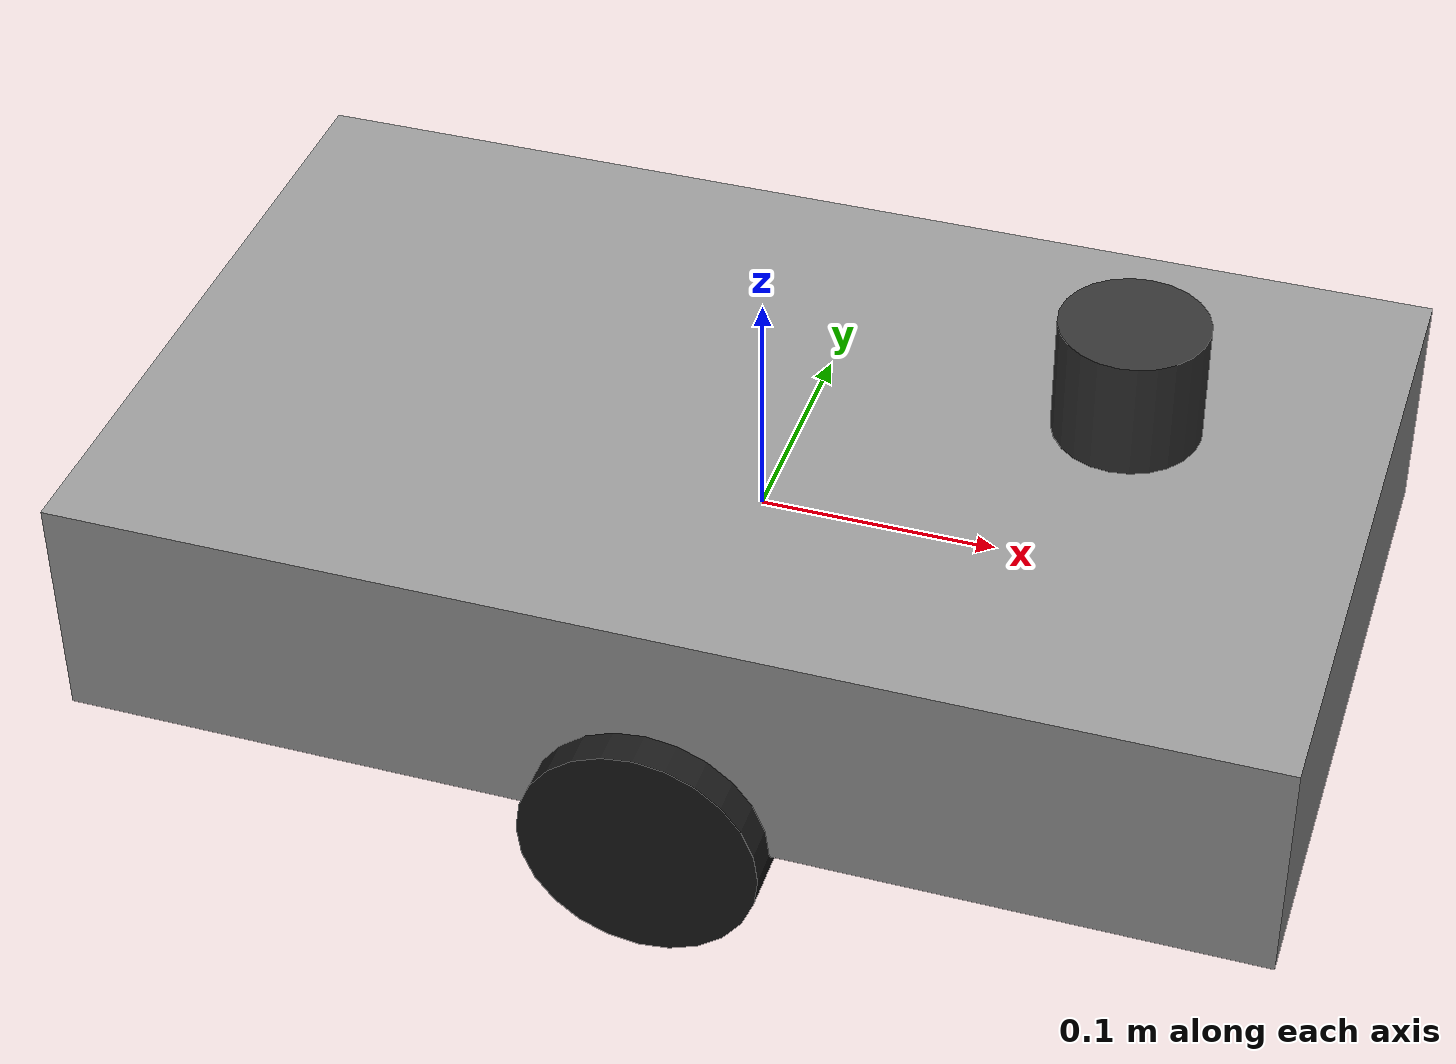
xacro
<?xml version="1.0"?>
<robot xmlns:xacro="http://www.ros.org/wiki/xacro" name="diffbot">

  <!-- Units: meters, kilograms, radians -->

  <!-- Chassis sized to approximate GO2-W footprint -->
  <xacro:property name="chassis_length" value="0.50"/>
  <xacro:property name="chassis_width"  value="0.30"/>
  <xacro:property name="chassis_height" value="0.10"/>

  <xacro:property name="wheel_radius" value="0.05"/>
  <xacro:property name="wheel_width"  value="0.03"/>
  <xacro:property name="wheel_separation" value="0.30"/>

  <xacro:property name="caster_radius" value="0.025"/>

  <!-- base_link at chassis COM, z = wheel_radius + chassis_half_height -->
  <xacro:property name="base_z" value="${wheel_radius + chassis_height/2.0}"/>
  <xacro:property name="wheel_z" value="${wheel_radius - base_z}"/>

  <xacro:macro name="inertial_box" params="mass x y z">
    <inertial>
      <origin xyz="0 0 0" rpy="0 0 0"/>
      <mass value="${mass}"/>
      <inertia
        ixx="${mass/12.0 * (y*y + z*z)}"
        iyy="${mass/12.0 * (x*x + z*z)}"
        izz="${mass/12.0 * (x*x + y*y)}"
        ixy="0" ixz="0" iyz="0"/>
    </inertial>
  </xacro:macro>

  <xacro:macro name="inertial_cylinder_y" params="mass radius length">
    <inertial>
      <origin xyz="0 0 0" rpy="0 0 0"/>
      <mass value="${mass}"/>
      <inertia
        ixx="${mass/12.0 * (3*radius*radius + length*length)}"
        iyy="${0.5*mass*radius*radius}"
        izz="${mass/12.0 * (3*radius*radius + length*length)}"
        ixy="0" ixz="0" iyz="0"/>
    </inertial>
  </xacro:macro>

  <!-- Root frame: base_link (matches real GO2 convention, no base_footprint) -->
  <link name="base_link">
    <visual>
      <origin xyz="0 0 0" rpy="0 0 0"/>
      <geometry>
        <box size="${chassis_length} ${chassis_width} ${chassis_height}"/>
      </geometry>
      <material name="Grey">
        <color rgba="0.6 0.6 0.6 1.0"/>
      </material>
    </visual>
    <collision>
      <origin xyz="0 0 0" rpy="0 0 0"/>
      <geometry>
        <box size="${chassis_length} ${chassis_width} ${chassis_height}"/>
      </geometry>
    </collision>
    <xacro:inertial_box mass="5.0" x="${chassis_length}" y="${chassis_width}" z="${chassis_height}"/>
  </link>

  <!-- Left drive wheel -->
  <link name="left_wheel_link">
    <visual>
      <origin xyz="0 0 0" rpy="${pi/2} 0 0"/>
      <geometry>
        <cylinder radius="${wheel_radius}" length="${wheel_width}"/>
      </geometry>
      <material name="Black">
        <color rgba="0.1 0.1 0.1 1.0"/>
      </material>
    </visual>
    <collision>
      <origin xyz="0 0 0" rpy="${pi/2} 0 0"/>
      <geometry>
        <cylinder radius="${wheel_radius}" length="${wheel_width}"/>
      </geometry>
    </collision>
    <xacro:inertial_cylinder_y mass="0.5" radius="${wheel_radius}" length="${wheel_width}"/>
  </link>

  <joint name="left_wheel_joint" type="continuous">
    <parent link="base_link"/>
    <child link="left_wheel_link"/>
    <origin xyz="0 ${wheel_separation/2} ${wheel_z}" rpy="0 0 0"/>
    <axis xyz="0 1 0"/>
  </joint>

  <!-- Right drive wheel -->
  <link name="right_wheel_link">
    <visual>
      <origin xyz="0 0 0" rpy="${pi/2} 0 0"/>
      <geometry>
        <cylinder radius="${wheel_radius}" length="${wheel_width}"/>
      </geometry>
      <material name="Black"/>
    </visual>
    <collision>
      <origin xyz="0 0 0" rpy="${pi/2} 0 0"/>
      <geometry>
        <cylinder radius="${wheel_radius}" length="${wheel_width}"/>
      </geometry>
    </collision>
    <xacro:inertial_cylinder_y mass="0.5" radius="${wheel_radius}" length="${wheel_width}"/>
  </link>

  <joint name="right_wheel_joint" type="continuous">
    <parent link="base_link"/>
    <child link="right_wheel_link"/>
    <origin xyz="0 ${-wheel_separation/2} ${wheel_z}" rpy="0 0 0"/>
    <axis xyz="0 1 0"/>
  </joint>

  <!-- Rear caster (passive support) -->
  <link name="caster_link">
    <visual>
      <origin xyz="0 0 0" rpy="0 0 0"/>
      <geometry>
        <sphere radius="${caster_radius}"/>
      </geometry>
      <material name="DarkGrey">
        <color rgba="0.3 0.3 0.3 1.0"/>
      </material>
    </visual>
    <collision>
      <origin xyz="0 0 0" rpy="0 0 0"/>
      <geometry>
        <sphere radius="${caster_radius}"/>
      </geometry>
    </collision>
    <inertial>
      <origin xyz="0 0 0" rpy="0 0 0"/>
      <mass value="0.1"/>
      <inertia
        ixx="${2.0/5.0 * 0.1 * caster_radius * caster_radius}"
        iyy="${2.0/5.0 * 0.1 * caster_radius * caster_radius}"
        izz="${2.0/5.0 * 0.1 * caster_radius * caster_radius}"
        ixy="0" ixz="0" iyz="0"/>
    </inertial>
  </link>

  <joint name="caster_joint" type="fixed">
    <parent link="base_link"/>
    <child link="caster_link"/>
    <!-- Rear center, touching ground: z offset = caster_radius - wheel_radius -->
    <origin xyz="${-chassis_length/2 + caster_radius} 0 ${-(wheel_radius - caster_radius) - chassis_height/2.0}" rpy="0 0 0"/>
  </joint>

  <!-- Caster has frictionless contact so it slides freely -->
  <gazebo reference="caster_link">
    <mu1>0.001</mu1>
    <mu2>0.001</mu2>
  </gazebo>

  <!-- 3D lidar ("Ouster-like") mounted on top -->
  <link name="lidar_link">
    <visual>
      <origin xyz="0 0 0" rpy="0 0 0"/>
      <geometry>
        <cylinder radius="0.03" length="0.05"/>
      </geometry>
      <material name="DarkGrey2">
        <color rgba="0.2 0.2 0.2 1.0"/>
      </material>
    </visual>
    <collision>
      <origin xyz="0 0 0" rpy="0 0 0"/>
      <geometry>
        <cylinder radius="0.03" length="0.05"/>
      </geometry>
    </collision>
    <xacro:inertial_cylinder_y mass="0.2" radius="0.03" length="0.05"/>
  </link>

  <joint name="lidar_joint" type="fixed">
    <parent link="base_link"/>
    <child link="lidar_link"/>
    <!-- Forward, centered, above chassis -->
    <origin xyz="0.15 0.0 0.10" rpy="0 0 0"/>
  </joint>

  <!-- Gazebo Sim (Fortress / ign-gazebo6) plugins -->
  <gazebo>
    <plugin
      filename="ignition-gazebo-diff-drive-system"
      name="gz::sim::systems::DiffDrive">
      <left_joint>left_wheel_joint</left_joint>
      <right_joint>right_wheel_joint</right_joint>
      <wheel_separation>${wheel_separation}</wheel_separation>
      <wheel_radius>${wheel_radius}</wheel_radius>
      <max_linear_acceleration>3</max_linear_acceleration>
      <min_linear_acceleration>-3</min_linear_acceleration>
      <max_angular_acceleration>5</max_angular_acceleration>
      <min_angular_acceleration>-5</min_angular_acceleration>
      <max_linear_velocity>2</max_linear_velocity>
      <min_linear_velocity>-2</min_linear_velocity>
    </plugin>

    <plugin
      filename="ignition-gazebo-joint-state-publisher-system"
      name="gz::sim::systems::JointStatePublisher" />

    <plugin
      filename="ignition-gazebo-odometry-publisher-system"
      name="ignition::gazebo::systems::OdometryPublisher">
      <dimensions>3</dimensions>
      <odom_frame>odom</odom_frame>
      <robot_base_frame>base_link</robot_base_frame>
      <odom_publish_frequency>50</odom_publish_frequency>
    </plugin>
  </gazebo>

  <!-- Lidar sensor for Gazebo -->
  <gazebo reference="lidar_link">
    <sensor name="ouster" type="gpu_lidar">
      <topic>/diffbot/ouster/points</topic>
      <update_rate>10</update_rate>
      <lidar>
        <scan>
          <horizontal>
            <samples>1024</samples>
            <resolution>1</resolution>
            <min_angle>-3.14159</min_angle>
            <max_angle>3.14159</max_angle>
          </horizontal>
          <vertical>
            <samples>32</samples>
            <resolution>1</resolution>
            <min_angle>-0.261799</min_angle>
            <max_angle>0.261799</max_angle>
          </vertical>
        </scan>
        <range>
          <min>0.1</min>
          <max>20.0</max>
          <resolution>0.01</resolution>
        </range>
      </lidar>
      <alwaysOn>1</alwaysOn>
      <visualize>true</visualize>
    </sensor>
  </gazebo>

</robot>
